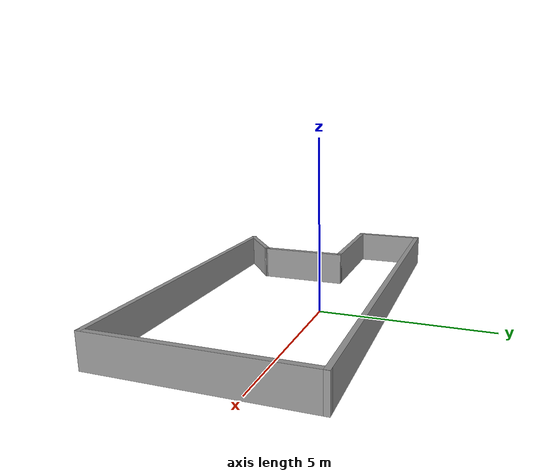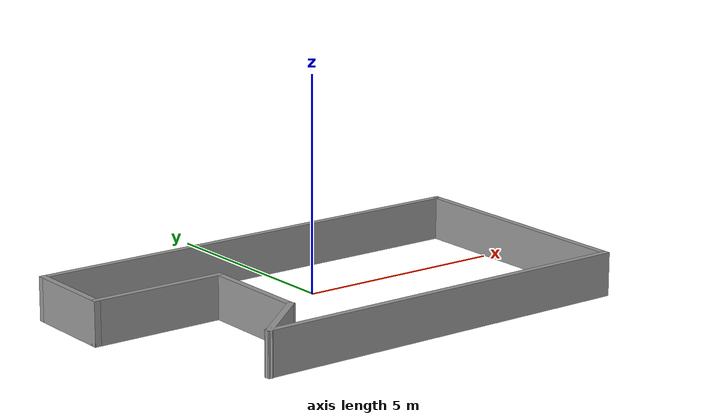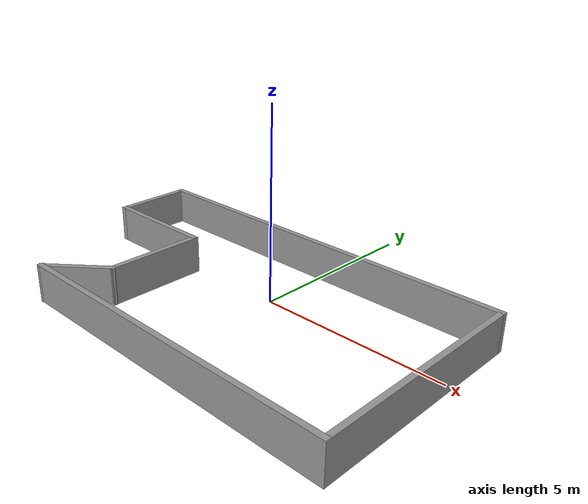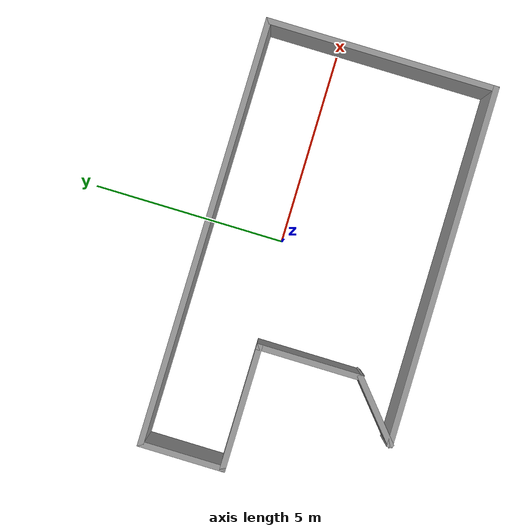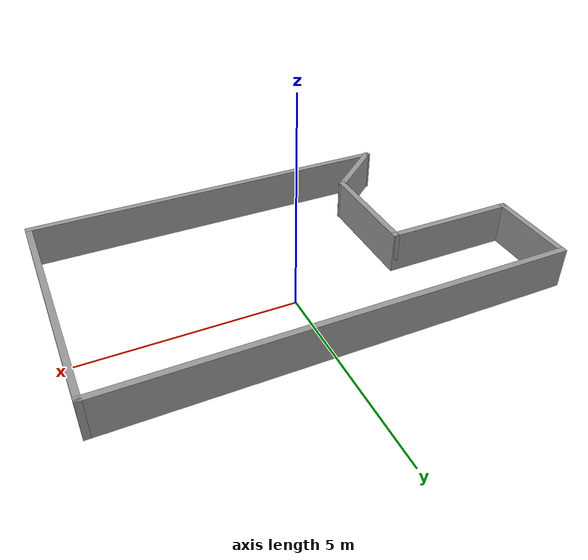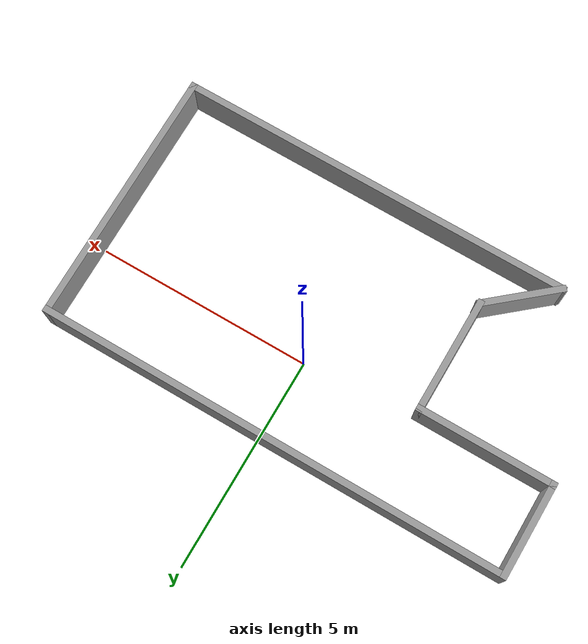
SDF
<?xml version='1.0'?>
<sdf version='1.6'>
  <model name='my_wall'>
    <pose frame=''>-0.320423 -1.05117 0 0 -0 0</pose>
    <link name='Wall_13'>
      <collision name='Wall_13_Collision'>
        <geometry>
          <box>
            <size>9.25 0.15 1.0</size>
          </box>
        </geometry>
        <pose frame=''>0 0 0.5 0 -0 0</pose>
      </collision>
      <visual name='Wall_13_Visual'>
        <pose frame=''>0 0 0.5 0 -0 0</pose>
        <geometry>
          <box>
            <size>9.25 0.15 1.0</size>
          </box>
        </geometry>
        <material>
          <script>
            <uri>file://media/materials/scripts/gazebo.material</uri>
            <name>Gazebo/Grey</name>
          </script>
          <ambient>1 1 1 1</ambient>
        </material>
        <meta>
          <layer>0</layer>
        </meta>
      </visual>
      <pose frame=''>0.875 -2.90964 0 0 -0 0</pose>
    </link>
    <link name='Wall_14'>
      <collision name='Wall_14_Collision'>
        <geometry>
          <box>
            <size>6 0.15 1.0</size>
          </box>
        </geometry>
        <pose frame=''>0 0 0.5 0 -0 0</pose>
      </collision>
      <visual name='Wall_14_Visual'>
        <pose frame=''>0 0 0.5 0 -0 0</pose>
        <geometry>
          <box>
            <size>6 0.15 1.0</size>
          </box>
        </geometry>
        <material>
          <script>
            <uri>file://media/materials/scripts/gazebo.material</uri>
            <name>Gazebo/Grey</name>
          </script>
          <ambient>1 1 1 1</ambient>
        </material>
        <meta>
          <layer>0</layer>
        </meta>
      </visual>
      <pose frame=''>5.425 0.015364 0 0 -0 1.5708</pose>
    </link>
    <link name='Wall_15'>
      <collision name='Wall_15_Collision'>
        <geometry>
          <box>
            <size>11 0.15 1.0</size>
          </box>
        </geometry>
        <pose frame=''>0 0 0.5 0 -0 0</pose>
      </collision>
      <visual name='Wall_15_Visual'>
        <pose frame=''>0 0 0.5 0 -0 0</pose>
        <geometry>
          <box>
            <size>11 0.15 1.0</size>
          </box>
        </geometry>
        <material>
          <script>
            <uri>file://media/materials/scripts/gazebo.material</uri>
            <name>Gazebo/Grey</name>
          </script>
          <ambient>1 1 1 1</ambient>
        </material>
        <meta>
          <layer>0</layer>
        </meta>
      </visual>
      <pose frame=''>-0 2.94036 0 0 -0 3.14159</pose>
    </link>
    <link name='Wall_16'>
      <collision name='Wall_16_Collision'>
        <geometry>
          <box>
            <size>2.25 0.15 1.0</size>
          </box>
        </geometry>
        <pose frame=''>0 0 0.5 0 -0 0</pose>
      </collision>
      <visual name='Wall_16_Visual'>
        <pose frame=''>0 0 0.5 0 -0 0</pose>
        <geometry>
          <box>
            <size>2.25 0.15 1.0</size>
          </box>
        </geometry>
        <material>
          <script>
            <uri>file://media/materials/scripts/gazebo.material</uri>
            <name>Gazebo/Grey</name>
          </script>
          <ambient>1 1 1 1</ambient>
        </material>
        <meta>
          <layer>0</layer>
        </meta>
      </visual>
      <pose frame=''>-5.425 1.89036 0 0 -0 -1.5708</pose>
    </link>
    <link name='Wall_17'>
      <collision name='Wall_17_Collision'>
        <geometry>
          <box>
            <size>3.25 0.15 1.0</size>
          </box>
        </geometry>
        <pose frame=''>0 0 0.5 0 -0 0</pose>
      </collision>
      <visual name='Wall_17_Visual'>
        <pose frame=''>0 0 0.5 0 -0 0</pose>
        <geometry>
          <box>
            <size>3.25 0.15 1.0</size>
          </box>
        </geometry>
        <material>
          <script>
            <uri>file://media/materials/scripts/gazebo.material</uri>
            <name>Gazebo/Grey</name>
          </script>
          <ambient>1 1 1 1</ambient>
        </material>
        <meta>
          <layer>0</layer>
        </meta>
      </visual>
      <pose frame=''>-3.875 0.840364 0 0 -0 0</pose>
    </link>
    <link name='Wall_18'>
      <collision name='Wall_18_Collision'>
        <geometry>
          <box>
            <size>2.75 0.15 1.0</size>
          </box>
        </geometry>
        <pose frame=''>0 0 0.5 0 -0 0</pose>
      </collision>
      <visual name='Wall_18_Visual'>
        <pose frame=''>0 0 0.5 0 -0 0</pose>
        <geometry>
          <box>
            <size>2.75 0.15 1.0</size>
          </box>
        </geometry>
        <material>
          <script>
            <uri>file://media/materials/scripts/gazebo.material</uri>
            <name>Gazebo/Grey</name>
          </script>
          <ambient>1 1 1 1</ambient>
        </material>
        <meta>
          <layer>0</layer>
        </meta>
      </visual>
      <pose frame=''>-2.325 -0.459636 0 0 -0 -1.5708</pose>
    </link>
    <link name='Wall_19'>
      <collision name='Wall_19_Collision'>
        <geometry>
          <box>
            <size>1.92342 0.15 1.0</size>
          </box>
        </geometry>
        <pose frame=''>0 0 0.5 0 -0 0</pose>
      </collision>
      <visual name='Wall_19_Visual'>
        <pose frame=''>0 0 0.5 0 -0 0</pose>
        <geometry>
          <box>
            <size>1.92342 0.15 1.0</size>
          </box>
        </geometry>
        <material>
          <script>
            <uri>file://media/materials/scripts/gazebo.material</uri>
            <name>Gazebo/Grey</name>
          </script>
          <ambient>1 1 1 1</ambient>
        </material>
        <meta>
          <layer>0</layer>
        </meta>
      </visual>
      <pose frame=''>-3 -2.33464 0 0 -0 -2.43602</pose>
    </link>
    <static>1</static>
  </model>
</sdf>
